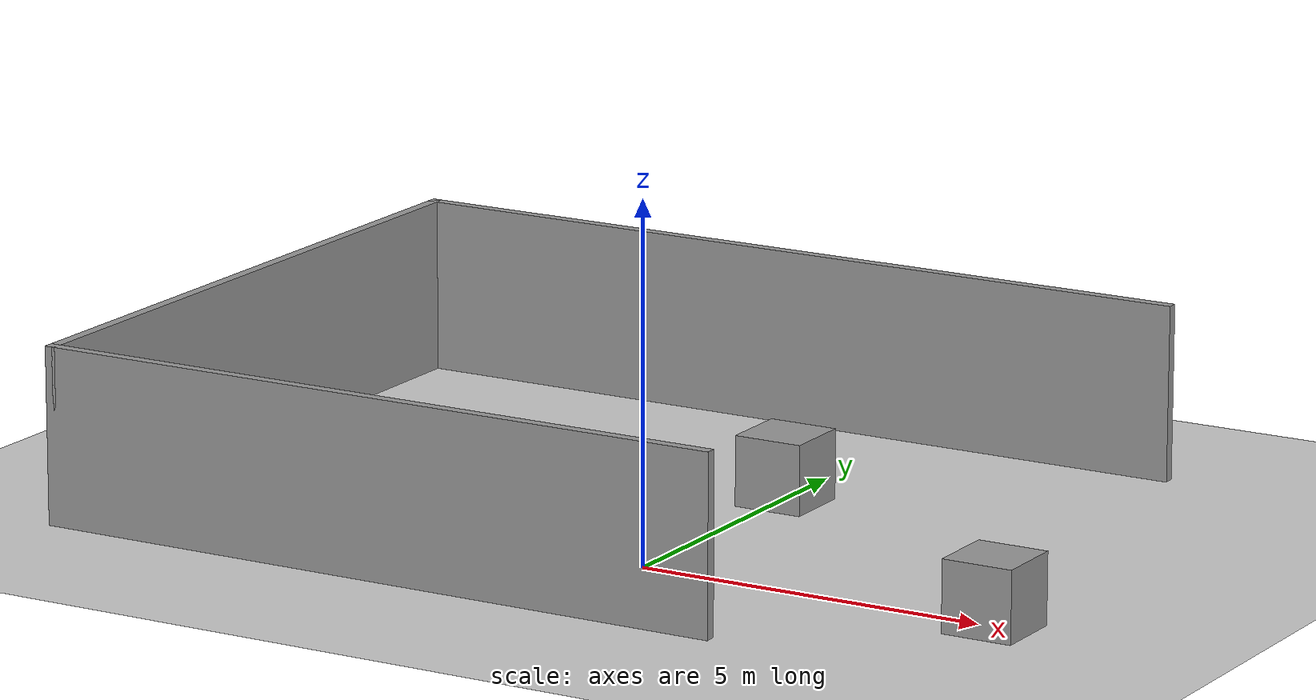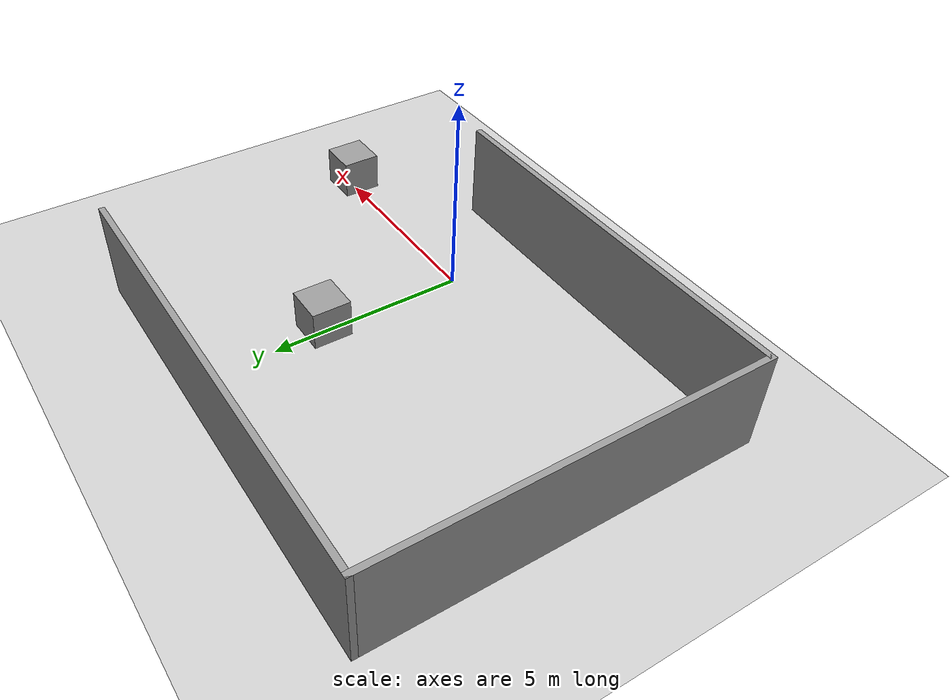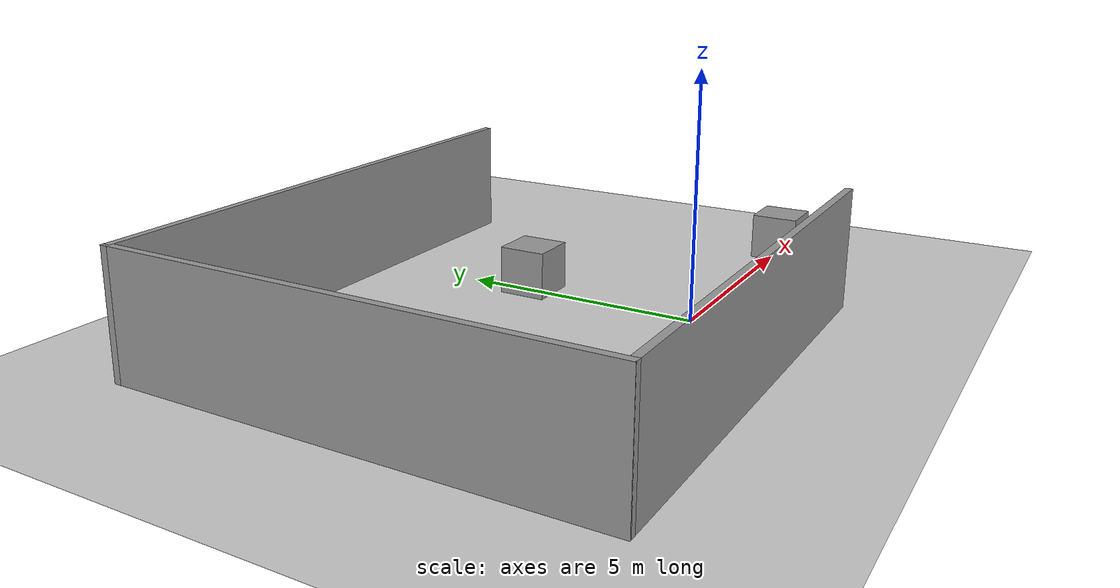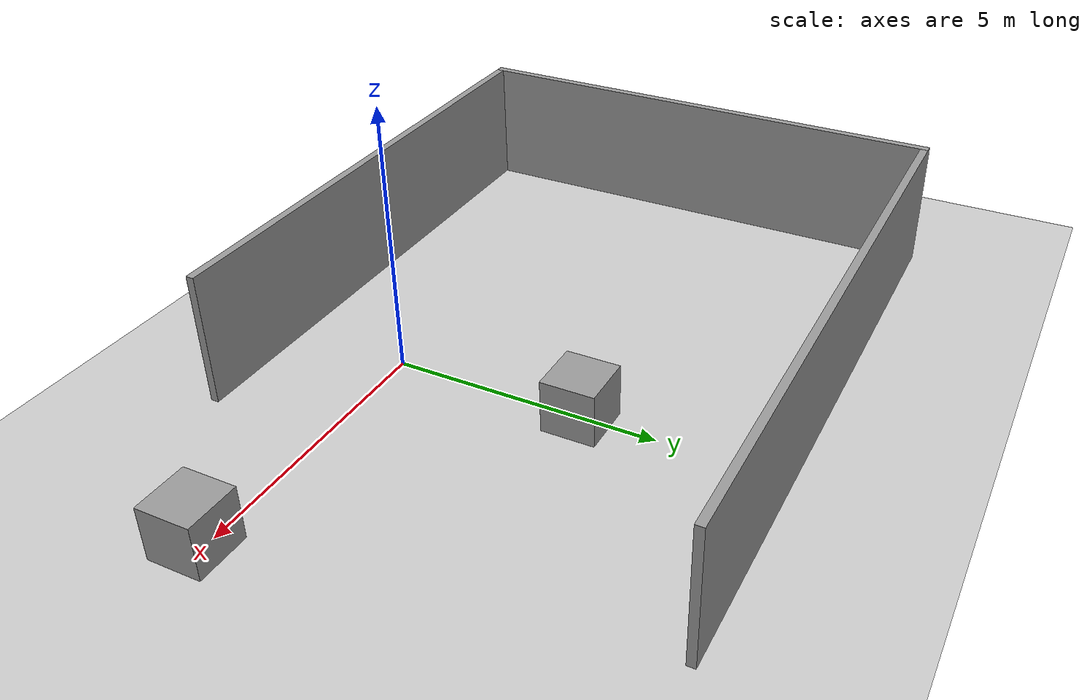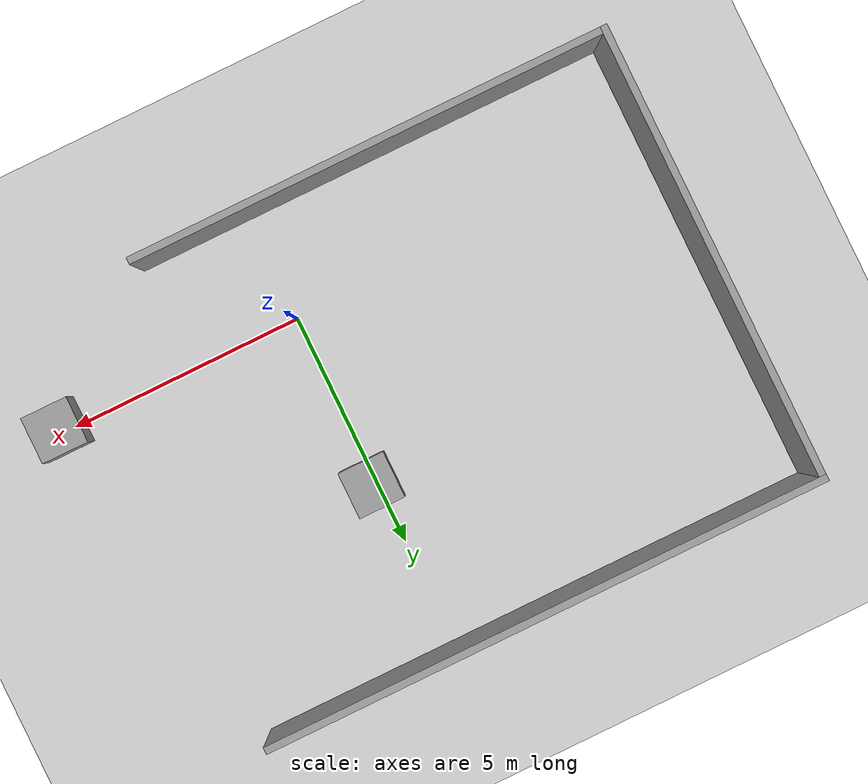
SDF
<sdf version="1.7">
 <world name="default">
  <light name="sun" type="directional">
   <pose>0 0 10 0 -0 0</pose>
   <diffuse>0.8 0.8 0.8 1</diffuse>
   <specular>0.2 0.2 0.2 1</specular>
   <attenuation>
    <range>1000</range>
    <constant>0.9</constant>
    <linear>0.01</linear>
    <quadratic>0.001</quadratic>
   </attenuation>
   <direction>-0.5 0.1 -0.9</direction>
   <spot><inner_angle>0</inner_angle><outer_angle>0</outer_angle><falloff>0</falloff></spot>
  </light>
  <model name="ground_plane">
   <static>1</static>
   <link name="link">
    <collision name="collision">
     <geometry><plane><normal>0 0 1</normal><size>100 100</size></plane></geometry>
     <surface><friction><ode><mu>100</mu><mu2>50</mu2></ode></friction></surface>
    </collision>
    <visual name="visual">
     <cast_shadows>0</cast_shadows>
     <geometry><plane><normal>0 0 1</normal><size>100 100</size></plane></geometry>
     <material>
      <script><uri>file://media/materials/scripts/gazebo.material</uri><name>Gazebo/Grey</name></script>
     </material>
    </visual>
   </link>
  </model>
  <gravity>0 0 -9.8</gravity>
  <magnetic_field>6e-06 2.3e-05 -4.2e-05</magnetic_field>
  <atmosphere type="adiabatic"/>
  <physics type="ode">
   <max_step_size>0.001</max_step_size>
   <real_time_factor>1</real_time_factor>
   <real_time_update_rate>1000</real_time_update_rate>
  </physics>
  <scene><ambient>0.4 0.4 0.4 1</ambient><background>0.7 0.7 0.7 1</background><shadows>1</shadows></scene>
  <audio><device>default</device></audio>
  <spherical_coordinates>
   <surface_model>EARTH_WGS84</surface_model>
   <latitude_deg>0</latitude_deg>
   <longitude_deg>0</longitude_deg>
   <elevation>0</elevation>
   <heading_deg>0</heading_deg>
  </spherical_coordinates>
  <model name="wall">
   <pose>-1.89004 2.4953 0 0 -0 0</pose>
   <link name="Wall_2">
    <collision name="Wall_2_Collision">
     <geometry><box><size>12 0.15 2.5</size></box></geometry>
     <pose>0 0 1.25 0 -0 0</pose>
    </collision>
    <visual name="Wall_2_Visual">
     <pose>0 0 1.25 0 -0 0</pose>
     <geometry><box><size>12 0.15 2.5</size></box></geometry>
     <material>
      <script><uri>file://media/materials/scripts/gazebo.material</uri><name>Gazebo/Grey</name></script>
      <ambient>1 1 1 1</ambient>
     </material>
     <meta><layer>0</layer></meta>
    </visual>
    <pose>0 4.8 0 0 -0 3.14159</pose>
   </link>
   <link name="Wall_3">
    <collision name="Wall_3_Collision">
     <geometry><box><size>9.75 0.15 2.5</size></box></geometry>
     <pose>0 0 1.25 0 -0 0</pose>
    </collision>
    <visual name="Wall_3_Visual">
     <pose>0 0 1.25 0 -0 0</pose>
     <geometry><box><size>9.75 0.15 2.5</size></box></geometry>
     <material>
      <script><uri>file://media/materials/scripts/gazebo.material</uri><name>Gazebo/Grey</name></script>
      <ambient>1 1 1 1</ambient>
     </material>
     <meta><layer>0</layer></meta>
    </visual>
    <pose>-5.925 -0 0 0 -0 -1.5708</pose>
   </link>
   <link name="Wall_4">
    <collision name="Wall_4_Collision">
     <geometry><box><size>10.25 0.15 2.5</size></box></geometry>
     <pose>0 0 1.25 0 -0 0</pose>
    </collision>
    <visual name="Wall_4_Visual">
     <pose>0 0 1.25 0 -0 0</pose>
     <geometry><box><size>10.25 0.15 2.5</size></box></geometry>
     <material>
      <script><uri>file://media/materials/scripts/gazebo.material</uri><name>Gazebo/Grey</name></script>
      <ambient>1 1 1 1</ambient>
     </material>
     <meta><layer>0</layer></meta>
    </visual>
    <pose>-0.875 -4.8 0 0 -0 0</pose>
   </link>
   <static>1</static>
  </model>
  <model name="unit_box">
   <pose>5.27213 -0.084041 0.499995 -1e-05 0 0</pose>
   <link name="link">
    <inertial>
     <mass>1</mass>
     <inertia>
      <ixx>0.166667</ixx>
      <ixy>0</ixy>
      <ixz>0</ixz>
      <iyy>0.166667</iyy>
      <iyz>0</iyz>
      <izz>0.166667</izz>
     </inertia>
    </inertial>
    <collision name="collision"><geometry><box><size>1 1 1</size></box></geometry></collision>
    <visual name="visual">
     <geometry><box><size>1 1 1</size></box></geometry>
     <material>
      <script><name>Gazebo/Grey</name><uri>file://media/materials/scripts/gazebo.material</uri></script>
     </material>
    </visual>
   </link>
  </model>
  <model name="unit_box_0">
   <pose>0.0966 3.649 0.5 0 -0 0</pose>
   <link name="link">
    <inertial>
     <mass>1</mass>
     <inertia>
      <ixx>0.166667</ixx>
      <ixy>0</ixy>
      <ixz>0</ixz>
      <iyy>0.166667</iyy>
      <iyz>0</iyz>
      <izz>0.166667</izz>
     </inertia>
    </inertial>
    <collision name="collision"><geometry><box><size>1 1 1</size></box></geometry></collision>
    <visual name="visual">
     <geometry><box><size>1 1 1</size></box></geometry>
     <material>
      <script><name>Gazebo/Grey</name><uri>file://media/materials/scripts/gazebo.material</uri></script>
     </material>
    </visual>
   </link>
  </model>
 </world>
</sdf>
